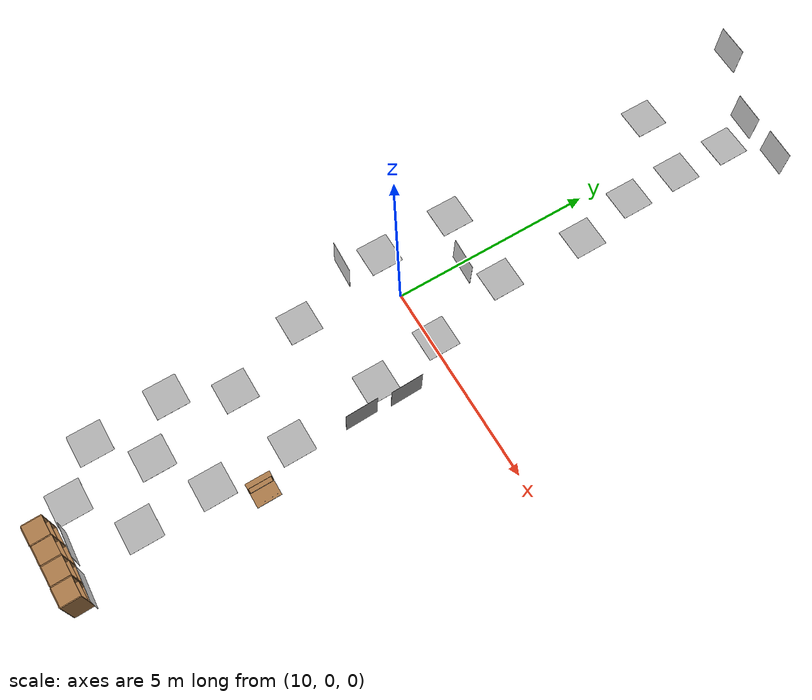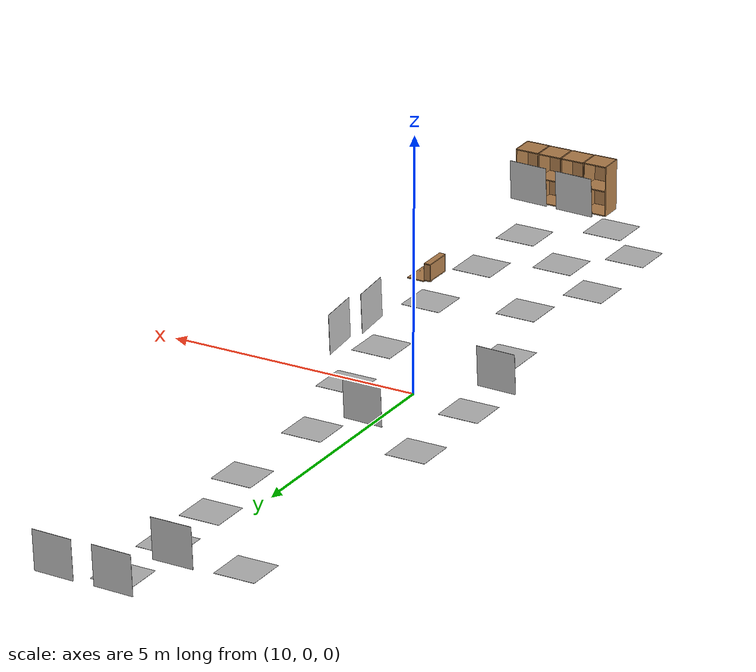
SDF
<sdf version="1.6">
 <world name="factory">
  <model name="cabinet_clone">
   <static>1</static>
   <link name="cabinet_bottom_plate">
    <inertial>
     <pose>0 0 -1 0 -0 0</pose>
     <inertia><ixx>2.05</ixx><ixy>0</ixy><ixz>0</ixz><iyy>2.05</iyy><iyz>0</iyz><izz>2.05</izz></inertia>
     <mass>25</mass>
    </inertial>
    <collision name="cabinet_bottom_plate_geom">
     <pose>0 0 0.01 0 -0 0</pose>
     <geometry><box><size>0.45 0.45 0.02</size></box></geometry>
    </collision>
    <visual name="cabinet_bottom_plate_geom_visual">
     <pose>0 0 0.01 0 -0 0</pose>
     <geometry><box><size>0.45 0.45 0.02</size></box></geometry>
     <material>
      <script><uri>file://media/materials/scripts/gazebo.material</uri><name>Gazebo/Wood</name></script>
     </material>
    </visual>
    <collision name="cabinet_bottom_plate_geom_cabinet_back_plate">
     <pose>0.235 0 0.51 0 -0 0</pose>
     <geometry><box><size>0.02 0.45 1.02</size></box></geometry>
    </collision>
    <visual name="cabinet_bottom_plate_geom_cabinet_back_plate_visual">
     <pose>0.235 0 0.51 0 -0 0</pose>
     <geometry><box><size>0.02 0.45 1.02</size></box></geometry>
     <material>
      <script><uri>file://media/materials/scripts/gazebo.material</uri><name>Gazebo/Wood</name></script>
     </material>
    </visual>
    <collision name="cabinet_bottom_plate_geom_cabinet_left_plate">
     <pose>0 0.235 0.51 0 -0 0</pose>
     <geometry><box><size>0.45 0.02 1.02</size></box></geometry>
    </collision>
    <visual name="cabinet_bottom_plate_geom_cabinet_left_plate_visual">
     <pose>0 0.235 0.51 0 -0 0</pose>
     <geometry><box><size>0.45 0.02 1.02</size></box></geometry>
     <material>
      <script><uri>file://media/materials/scripts/gazebo.material</uri><name>Gazebo/Wood</name></script>
     </material>
    </visual>
    <collision name="cabinet_bottom_plate_geom_cabinet_middle_plate">
     <pose>0 0 0.51 0 -0 0</pose>
     <geometry><box><size>0.45 0.45 0.02</size></box></geometry>
    </collision>
    <visual name="cabinet_bottom_plate_geom_cabinet_middle_plate_visual">
     <pose>0 0 0.51 0 -0 0</pose>
     <geometry><box><size>0.45 0.45 0.02</size></box></geometry>
     <material>
      <script><uri>file://media/materials/scripts/gazebo.material</uri><name>Gazebo/Wood</name></script>
     </material>
    </visual>
    <collision name="cabinet_bottom_plate_geom_cabinet_right_plate">
     <pose>0 -0.235 0.51 0 -0 0</pose>
     <geometry><box><size>0.45 0.02 1.02</size></box></geometry>
    </collision>
    <visual name="cabinet_bottom_plate_geom_cabinet_right_plate_visual">
     <pose>0 -0.235 0.51 0 -0 0</pose>
     <geometry><box><size>0.45 0.02 1.02</size></box></geometry>
     <material>
      <script><uri>file://media/materials/scripts/gazebo.material</uri><name>Gazebo/Wood</name></script>
     </material>
    </visual>
    <collision name="cabinet_bottom_plate_geom_cabinet_top_plate">
     <pose>0 0 1.01 0 -0 0</pose>
     <geometry><box><size>0.45 0.45 0.02</size></box></geometry>
    </collision>
    <visual name="cabinet_bottom_plate_geom_cabinet_top_plate_visual">
     <pose>0 0 1.01 0 -0 0</pose>
     <geometry><box><size>0.45 0.45 0.02</size></box></geometry>
     <material>
      <script><uri>file://media/materials/scripts/gazebo.material</uri><name>Gazebo/Wood</name></script>
     </material>
    </visual>
   </link>
   <pose>12.5585 -9.14446 0.037072 0 0 -1.55676</pose>
  </model>
  <model name="cabinet_clone_0">
   <static>1</static>
   <link name="cabinet_bottom_plate">
    <inertial>
     <pose>0 0 -1 0 -0 0</pose>
     <inertia><ixx>2.05</ixx><ixy>0</ixy><ixz>0</ixz><iyy>2.05</iyy><iyz>0</iyz><izz>2.05</izz></inertia>
     <mass>25</mass>
    </inertial>
    <collision name="cabinet_bottom_plate_geom">
     <pose>0 0 0.01 0 -0 0</pose>
     <geometry><box><size>0.45 0.45 0.02</size></box></geometry>
    </collision>
    <visual name="cabinet_bottom_plate_geom_visual">
     <pose>0 0 0.01 0 -0 0</pose>
     <geometry><box><size>0.45 0.45 0.02</size></box></geometry>
     <material>
      <script><uri>file://media/materials/scripts/gazebo.material</uri><name>Gazebo/Wood</name></script>
     </material>
    </visual>
    <collision name="cabinet_bottom_plate_geom_cabinet_back_plate">
     <pose>0.235 0 0.51 0 -0 0</pose>
     <geometry><box><size>0.02 0.45 1.02</size></box></geometry>
    </collision>
    <visual name="cabinet_bottom_plate_geom_cabinet_back_plate_visual">
     <pose>0.235 0 0.51 0 -0 0</pose>
     <geometry><box><size>0.02 0.45 1.02</size></box></geometry>
     <material>
      <script><uri>file://media/materials/scripts/gazebo.material</uri><name>Gazebo/Wood</name></script>
     </material>
    </visual>
    <collision name="cabinet_bottom_plate_geom_cabinet_left_plate">
     <pose>0 0.235 0.51 0 -0 0</pose>
     <geometry><box><size>0.45 0.02 1.02</size></box></geometry>
    </collision>
    <visual name="cabinet_bottom_plate_geom_cabinet_left_plate_visual">
     <pose>0 0.235 0.51 0 -0 0</pose>
     <geometry><box><size>0.45 0.02 1.02</size></box></geometry>
     <material>
      <script><uri>file://media/materials/scripts/gazebo.material</uri><name>Gazebo/Wood</name></script>
     </material>
    </visual>
    <collision name="cabinet_bottom_plate_geom_cabinet_middle_plate">
     <pose>0 0 0.51 0 -0 0</pose>
     <geometry><box><size>0.45 0.45 0.02</size></box></geometry>
    </collision>
    <visual name="cabinet_bottom_plate_geom_cabinet_middle_plate_visual">
     <pose>0 0 0.51 0 -0 0</pose>
     <geometry><box><size>0.45 0.45 0.02</size></box></geometry>
     <material>
      <script><uri>file://media/materials/scripts/gazebo.material</uri><name>Gazebo/Wood</name></script>
     </material>
    </visual>
    <collision name="cabinet_bottom_plate_geom_cabinet_right_plate">
     <pose>0 -0.235 0.51 0 -0 0</pose>
     <geometry><box><size>0.45 0.02 1.02</size></box></geometry>
    </collision>
    <visual name="cabinet_bottom_plate_geom_cabinet_right_plate_visual">
     <pose>0 -0.235 0.51 0 -0 0</pose>
     <geometry><box><size>0.45 0.02 1.02</size></box></geometry>
     <material>
      <script><uri>file://media/materials/scripts/gazebo.material</uri><name>Gazebo/Wood</name></script>
     </material>
    </visual>
    <collision name="cabinet_bottom_plate_geom_cabinet_top_plate">
     <pose>0 0 1.01 0 -0 0</pose>
     <geometry><box><size>0.45 0.45 0.02</size></box></geometry>
    </collision>
    <visual name="cabinet_bottom_plate_geom_cabinet_top_plate_visual">
     <pose>0 0 1.01 0 -0 0</pose>
     <geometry><box><size>0.45 0.45 0.02</size></box></geometry>
     <material>
      <script><uri>file://media/materials/scripts/gazebo.material</uri><name>Gazebo/Wood</name></script>
     </material>
    </visual>
   </link>
   <pose>12.0748 -9.14339 0.037072 0 0 -1.55676</pose>
  </model>
  <model name="cabinet_clone_1">
   <static>1</static>
   <link name="cabinet_bottom_plate">
    <inertial>
     <pose>0 0 -1 0 -0 0</pose>
     <inertia><ixx>2.05</ixx><ixy>0</ixy><ixz>0</ixz><iyy>2.05</iyy><iyz>0</iyz><izz>2.05</izz></inertia>
     <mass>25</mass>
    </inertial>
    <collision name="cabinet_bottom_plate_geom">
     <pose>0 0 0.01 0 -0 0</pose>
     <geometry><box><size>0.45 0.45 0.02</size></box></geometry>
    </collision>
    <visual name="cabinet_bottom_plate_geom_visual">
     <pose>0 0 0.01 0 -0 0</pose>
     <geometry><box><size>0.45 0.45 0.02</size></box></geometry>
     <material>
      <script><uri>file://media/materials/scripts/gazebo.material</uri><name>Gazebo/Wood</name></script>
     </material>
    </visual>
    <collision name="cabinet_bottom_plate_geom_cabinet_back_plate">
     <pose>0.235 0 0.51 0 -0 0</pose>
     <geometry><box><size>0.02 0.45 1.02</size></box></geometry>
    </collision>
    <visual name="cabinet_bottom_plate_geom_cabinet_back_plate_visual">
     <pose>0.235 0 0.51 0 -0 0</pose>
     <geometry><box><size>0.02 0.45 1.02</size></box></geometry>
     <material>
      <script><uri>file://media/materials/scripts/gazebo.material</uri><name>Gazebo/Wood</name></script>
     </material>
    </visual>
    <collision name="cabinet_bottom_plate_geom_cabinet_left_plate">
     <pose>0 0.235 0.51 0 -0 0</pose>
     <geometry><box><size>0.45 0.02 1.02</size></box></geometry>
    </collision>
    <visual name="cabinet_bottom_plate_geom_cabinet_left_plate_visual">
     <pose>0 0.235 0.51 0 -0 0</pose>
     <geometry><box><size>0.45 0.02 1.02</size></box></geometry>
     <material>
      <script><uri>file://media/materials/scripts/gazebo.material</uri><name>Gazebo/Wood</name></script>
     </material>
    </visual>
    <collision name="cabinet_bottom_plate_geom_cabinet_middle_plate">
     <pose>0 0 0.51 0 -0 0</pose>
     <geometry><box><size>0.45 0.45 0.02</size></box></geometry>
    </collision>
    <visual name="cabinet_bottom_plate_geom_cabinet_middle_plate_visual">
     <pose>0 0 0.51 0 -0 0</pose>
     <geometry><box><size>0.45 0.45 0.02</size></box></geometry>
     <material>
      <script><uri>file://media/materials/scripts/gazebo.material</uri><name>Gazebo/Wood</name></script>
     </material>
    </visual>
    <collision name="cabinet_bottom_plate_geom_cabinet_right_plate">
     <pose>0 -0.235 0.51 0 -0 0</pose>
     <geometry><box><size>0.45 0.02 1.02</size></box></geometry>
    </collision>
    <visual name="cabinet_bottom_plate_geom_cabinet_right_plate_visual">
     <pose>0 -0.235 0.51 0 -0 0</pose>
     <geometry><box><size>0.45 0.02 1.02</size></box></geometry>
     <material>
      <script><uri>file://media/materials/scripts/gazebo.material</uri><name>Gazebo/Wood</name></script>
     </material>
    </visual>
    <collision name="cabinet_bottom_plate_geom_cabinet_top_plate">
     <pose>0 0 1.01 0 -0 0</pose>
     <geometry><box><size>0.45 0.45 0.02</size></box></geometry>
    </collision>
    <visual name="cabinet_bottom_plate_geom_cabinet_top_plate_visual">
     <pose>0 0 1.01 0 -0 0</pose>
     <geometry><box><size>0.45 0.45 0.02</size></box></geometry>
     <material>
      <script><uri>file://media/materials/scripts/gazebo.material</uri><name>Gazebo/Wood</name></script>
     </material>
    </visual>
   </link>
   <pose>11.5886 -9.15198 0.037072 0 0 -1.55676</pose>
  </model>
  <model name="cabinet_clone_2">
   <static>1</static>
   <link name="cabinet_bottom_plate">
    <inertial>
     <pose>0 0 -1 0 -0 0</pose>
     <inertia><ixx>2.05</ixx><ixy>0</ixy><ixz>0</ixz><iyy>2.05</iyy><iyz>0</iyz><izz>2.05</izz></inertia>
     <mass>25</mass>
    </inertial>
    <collision name="cabinet_bottom_plate_geom">
     <pose>0 0 0.01 0 -0 0</pose>
     <geometry><box><size>0.45 0.45 0.02</size></box></geometry>
    </collision>
    <visual name="cabinet_bottom_plate_geom_visual">
     <pose>0 0 0.01 0 -0 0</pose>
     <geometry><box><size>0.45 0.45 0.02</size></box></geometry>
     <material>
      <script><uri>file://media/materials/scripts/gazebo.material</uri><name>Gazebo/Wood</name></script>
     </material>
    </visual>
    <collision name="cabinet_bottom_plate_geom_cabinet_back_plate">
     <pose>0.235 0 0.51 0 -0 0</pose>
     <geometry><box><size>0.02 0.45 1.02</size></box></geometry>
    </collision>
    <visual name="cabinet_bottom_plate_geom_cabinet_back_plate_visual">
     <pose>0.235 0 0.51 0 -0 0</pose>
     <geometry><box><size>0.02 0.45 1.02</size></box></geometry>
     <material>
      <script><uri>file://media/materials/scripts/gazebo.material</uri><name>Gazebo/Wood</name></script>
     </material>
    </visual>
    <collision name="cabinet_bottom_plate_geom_cabinet_left_plate">
     <pose>0 0.235 0.51 0 -0 0</pose>
     <geometry><box><size>0.45 0.02 1.02</size></box></geometry>
    </collision>
    <visual name="cabinet_bottom_plate_geom_cabinet_left_plate_visual">
     <pose>0 0.235 0.51 0 -0 0</pose>
     <geometry><box><size>0.45 0.02 1.02</size></box></geometry>
     <material>
      <script><uri>file://media/materials/scripts/gazebo.material</uri><name>Gazebo/Wood</name></script>
     </material>
    </visual>
    <collision name="cabinet_bottom_plate_geom_cabinet_middle_plate">
     <pose>0 0 0.51 0 -0 0</pose>
     <geometry><box><size>0.45 0.45 0.02</size></box></geometry>
    </collision>
    <visual name="cabinet_bottom_plate_geom_cabinet_middle_plate_visual">
     <pose>0 0 0.51 0 -0 0</pose>
     <geometry><box><size>0.45 0.45 0.02</size></box></geometry>
     <material>
      <script><uri>file://media/materials/scripts/gazebo.material</uri><name>Gazebo/Wood</name></script>
     </material>
    </visual>
    <collision name="cabinet_bottom_plate_geom_cabinet_right_plate">
     <pose>0 -0.235 0.51 0 -0 0</pose>
     <geometry><box><size>0.45 0.02 1.02</size></box></geometry>
    </collision>
    <visual name="cabinet_bottom_plate_geom_cabinet_right_plate_visual">
     <pose>0 -0.235 0.51 0 -0 0</pose>
     <geometry><box><size>0.45 0.02 1.02</size></box></geometry>
     <material>
      <script><uri>file://media/materials/scripts/gazebo.material</uri><name>Gazebo/Wood</name></script>
     </material>
    </visual>
    <collision name="cabinet_bottom_plate_geom_cabinet_top_plate">
     <pose>0 0 1.01 0 -0 0</pose>
     <geometry><box><size>0.45 0.45 0.02</size></box></geometry>
    </collision>
    <visual name="cabinet_bottom_plate_geom_cabinet_top_plate_visual">
     <pose>0 0 1.01 0 -0 0</pose>
     <geometry><box><size>0.45 0.45 0.02</size></box></geometry>
     <material>
      <script><uri>file://media/materials/scripts/gazebo.material</uri><name>Gazebo/Wood</name></script>
     </material>
    </visual>
   </link>
   <pose>11.1088 -9.16946 0.037072 0 0 -1.55676</pose>
  </model>
  <model name="wooden_case_clone">
   <link name="base">
    <pose>0 0 0.024 0 -0 0</pose>
    <inertial>
     <pose>-0.022184 0 0.171592 0 -0 0</pose>
     <mass>3.96264</mass>
     <inertia>
      <ixx>0.213536</ixx>
      <ixy>0</ixy>
      <ixz>0.000779377</ixz>
      <iyy>0.0708943</iyy>
      <iyz>0</iyz>
      <izz>0.154604</izz>
     </inertia>
    </inertial>
    <collision name="collision_back">
     <pose>-0.053975 0 0.1778 0 -0 0</pose>
     <geometry><box><size>0.01905 0.5461 0.3175</size></box></geometry>
     <surface>
      <contact>
       <poissons_ratio>0.347</poissons_ratio>
       <elastic_modulus>8.8e+09</elastic_modulus>
       <ode><kp>100000</kp><kd>100</kd><max_vel>100</max_vel><min_depth>0.001</min_depth></ode>
      </contact>
      <friction>
       <torsional>
        <coefficient>1</coefficient>
        <use_patch_radius>0</use_patch_radius>
        <surface_radius>0.01</surface_radius>
       </torsional>
      </friction>
     </surface>
    </collision>
    <visual name="visual_back">
     <pose>-0.053975 0 0.1778 0 -0 0</pose>
     <geometry><box><size>0.01905 0.5461 0.3175</size></box></geometry>
     <material>
      <script><uri>file://media/materials/scripts/gazebo.material</uri><name>Gazebo/Wood</name></script>
     </material>
    </visual>
    <collision name="collision_bottom">
     <pose>0 0 0.009525 0 -0 0</pose>
     <geometry><box><size>0.127 0.5842 0.01905</size></box></geometry>
     <surface>
      <contact>
       <poissons_ratio>0.347</poissons_ratio>
       <elastic_modulus>8.8e+09</elastic_modulus>
       <ode><kp>100000</kp><kd>100</kd><max_vel>100</max_vel><min_depth>0.001</min_depth></ode>
      </contact>
      <friction>
       <torsional>
        <coefficient>1</coefficient>
        <use_patch_radius>0</use_patch_radius>
        <surface_radius>0.01</surface_radius>
       </torsional>
      </friction>
     </surface>
    </collision>
    <visual name="visual_bottom">
     <pose>0 0 0.009525 0 -0 0</pose>
     <geometry><box><size>0.127 0.5842 0.01905</size></box></geometry>
     <material>
      <script><uri>file://media/materials/scripts/gazebo.material</uri><name>Gazebo/Wood</name></script>
     </material>
    </visual>
    <collision name="collision_top">
     <pose>0 0 0.346075 0 -0 0</pose>
     <geometry><box><size>0.127 0.5842 0.01905</size></box></geometry>
     <surface>
      <contact>
       <poissons_ratio>0.347</poissons_ratio>
       <elastic_modulus>8.8e+09</elastic_modulus>
       <ode><kp>100000</kp><kd>100</kd><max_vel>100</max_vel><min_depth>0.001</min_depth></ode>
      </contact>
      <friction>
       <torsional>
        <coefficient>1</coefficient>
        <use_patch_radius>0</use_patch_radius>
        <surface_radius>0.01</surface_radius>
       </torsional>
      </friction>
     </surface>
    </collision>
    <visual name="visual_top">
     <pose>0 0 0.346075 0 -0 0</pose>
     <geometry><box><size>0.127 0.5842 0.01905</size></box></geometry>
     <material>
      <script><uri>file://media/materials/scripts/gazebo.material</uri><name>Gazebo/Wood</name></script>
     </material>
    </visual>
    <collision name="collision_left">
     <pose>0 -0.282575 0.1778 0 -0 0</pose>
     <geometry><box><size>0.127 0.01905 0.3175</size></box></geometry>
     <surface>
      <contact>
       <poissons_ratio>0.347</poissons_ratio>
       <elastic_modulus>8.8e+09</elastic_modulus>
       <ode><kp>100000</kp><kd>100</kd><max_vel>100</max_vel><min_depth>0.001</min_depth></ode>
      </contact>
      <friction>
       <torsional>
        <coefficient>1</coefficient>
        <use_patch_radius>0</use_patch_radius>
        <surface_radius>0.01</surface_radius>
       </torsional>
      </friction>
     </surface>
    </collision>
    <visual name="visual_left">
     <pose>0 -0.282575 0.1778 0 -0 0</pose>
     <geometry><box><size>0.127 0.01905 0.3175</size></box></geometry>
     <material>
      <script><uri>file://media/materials/scripts/gazebo.material</uri><name>Gazebo/Wood</name></script>
     </material>
    </visual>
    <collision name="collision_right">
     <pose>0 0.282575 0.1778 0 -0 0</pose>
     <geometry><box><size>0.127 0.01905 0.3175</size></box></geometry>
     <surface>
      <contact>
       <poissons_ratio>0.347</poissons_ratio>
       <elastic_modulus>8.8e+09</elastic_modulus>
       <ode><kp>100000</kp><kd>100</kd><max_vel>100</max_vel><min_depth>0.001</min_depth></ode>
      </contact>
      <friction>
       <torsional>
        <coefficient>1</coefficient>
        <use_patch_radius>0</use_patch_radius>
        <surface_radius>0.01</surface_radius>
       </torsional>
      </friction>
     </surface>
    </collision>
    <visual name="visual_right">
     <pose>0 0.282575 0.1778 0 -0 0</pose>
     <geometry><box><size>0.127 0.01905 0.3175</size></box></geometry>
     <material>
      <script><uri>file://media/materials/scripts/gazebo.material</uri><name>Gazebo/Wood</name></script>
     </material>
    </visual>
    <collision name="collision_block_left">
     <pose>0.0095 -0.2151 -0.012 0 -0 0</pose>
     <geometry><box><size>0.108 0.05 0.024</size></box></geometry>
     <surface>
      <contact>
       <poissons_ratio>0.347</poissons_ratio>
       <elastic_modulus>8.8e+09</elastic_modulus>
       <ode><kp>100000</kp><kd>100</kd><max_vel>100</max_vel><min_depth>0.001</min_depth></ode>
      </contact>
      <friction>
       <torsional>
        <coefficient>1</coefficient>
        <use_patch_radius>0</use_patch_radius>
        <surface_radius>0.01</surface_radius>
       </torsional>
      </friction>
     </surface>
    </collision>
    <visual name="visual_block_left">
     <pose>0.0095 -0.2151 -0.012 0 -0 0</pose>
     <geometry><box><size>0.108 0.05 0.024</size></box></geometry>
     <material>
      <script><uri>file://media/materials/scripts/gazebo.material</uri><name>Gazebo/Wood</name></script>
     </material>
    </visual>
    <collision name="collision_block_right">
     <pose>0.0095 0.2151 -0.012 0 -0 0</pose>
     <geometry><box><size>0.108 0.05 0.024</size></box></geometry>
     <surface>
      <contact>
       <poissons_ratio>0.347</poissons_ratio>
       <elastic_modulus>8.8e+09</elastic_modulus>
       <ode><kp>100000</kp><kd>100</kd><max_vel>100</max_vel><min_depth>0.001</min_depth></ode>
      </contact>
      <friction>
       <torsional>
        <coefficient>1</coefficient>
        <use_patch_radius>0</use_patch_radius>
        <surface_radius>0.01</surface_radius>
       </torsional>
      </friction>
     </surface>
    </collision>
    <visual name="visual_block_right">
     <pose>0.0095 0.2151 -0.012 0 -0 0</pose>
     <geometry><box><size>0.108 0.05 0.024</size></box></geometry>
     <material>
      <script><uri>file://media/materials/scripts/gazebo.material</uri><name>Gazebo/Wood</name></script>
     </material>
    </visual>
   </link>
   <link name="lid">
    <pose>0.243775 0 0.009525 0 -0 0</pose>
    <inertial>
     <mass>1.97874</mass>
     <inertia>
      <ixx>0.0563367</ixx>
      <ixy>0</ixy>
      <ixz>0</ixz>
      <iyy>0.020911</iyy>
      <iyz>0</iyz>
      <izz>0.0771281</izz>
     </inertia>
    </inertial>
    <collision name="collision">
     <geometry><box><size>0.3556 0.5842 0.01905</size></box></geometry>
     <surface>
      <contact>
       <poissons_ratio>0.347</poissons_ratio>
       <elastic_modulus>8.8e+09</elastic_modulus>
       <ode><kp>100000</kp><kd>100</kd><max_vel>100</max_vel><min_depth>0.001</min_depth></ode>
      </contact>
      <friction>
       <torsional>
        <coefficient>1</coefficient>
        <use_patch_radius>0</use_patch_radius>
        <surface_radius>0.01</surface_radius>
       </torsional>
      </friction>
     </surface>
    </collision>
    <visual name="visual">
     <geometry><box><size>0.3556 0.5842 0.01905</size></box></geometry>
     <material>
      <script><uri>file://media/materials/scripts/gazebo.material</uri><name>Gazebo/Wood</name></script>
     </material>
    </visual>
    <visual name="tee_nut_1">
     <pose>0.122 -0.216 0 0 -0 0</pose>
     <geometry><cylinder><radius>0.00635</radius><length>0.0192405</length></cylinder></geometry>
     <material>
      <script><uri>file://media/materials/scripts/gazebo.material</uri><name>Gazebo/Grey</name></script>
     </material>
    </visual>
    <visual name="tee_nut_2">
     <pose>0.122 -0.088 0 0 -0 0</pose>
     <geometry><cylinder><radius>0.00635</radius><length>0.0192405</length></cylinder></geometry>
     <material>
      <script><uri>file://media/materials/scripts/gazebo.material</uri><name>Gazebo/Grey</name></script>
     </material>
    </visual>
    <visual name="tee_nut_3">
     <pose>0.122 0.088 0 0 -0 0</pose>
     <geometry><cylinder><radius>0.00635</radius><length>0.0192405</length></cylinder></geometry>
     <material>
      <script><uri>file://media/materials/scripts/gazebo.material</uri><name>Gazebo/Grey</name></script>
     </material>
    </visual>
    <visual name="tee_nut_4">
     <pose>0.122 0.216 0 0 -0 0</pose>
     <geometry><cylinder><radius>0.00635</radius><length>0.0192405</length></cylinder></geometry>
     <material>
      <script><uri>file://media/materials/scripts/gazebo.material</uri><name>Gazebo/Grey</name></script>
     </material>
    </visual>
   </link>
   <joint name="lid_hinge" type="revolute">
    <pose>-0.1778 0 0.01905 0 -0 0</pose>
    <parent>base</parent>
    <child>lid</child>
    <axis>
     <xyz>0 1 0</xyz>
     <limit><upper>0.523599</upper><lower>-1.5708</lower></limit>
     <use_parent_model_frame>0</use_parent_model_frame>
     <dynamics><spring_reference>0</spring_reference><spring_stiffness>0</spring_stiffness></dynamics>
    </axis>
   </joint>
   <pose>12.2927 -4.84304 -0.001057 0 -0.000442 -1e-06</pose>
  </model>
  <model name="kalibr_tag_clone_0_clone_clone_clone">
   <static>1</static>
   <link name="link">
    <inertial>
     <mass>0.1</mass>
     <inertia>
      <ixx>0.000166667</ixx>
      <iyy>0.000166667</iyy>
      <izz>0.000166667</izz>
      <ixy>0</ixy>
      <ixz>0</ixz>
      <iyz>0</iyz>
     </inertia>
    </inertial>
    <collision name="collision"><geometry><box><size>0.8 0.8 0.005</size></box></geometry></collision>
    <visual name="visual">
     <geometry><box><size>0.8 0.8 0.005</size></box></geometry>
     <material>
      <script>
       <uri>model://kalibr_tag/materials/scripts</uri>
       <uri>model://kalibr_tag/materials/textures</uri>
       <name>Kalibr_tag/Diffuse</name>
      </script>
     </material>
    </visual>
   </link>
   <pose>10.9156 4.4462 -0.000701 0 -0 0</pose>
  </model>
  <model name="kalibr_tag_clone_0_clone_clone_clone_6">
   <static>1</static>
   <link name="link">
    <inertial>
     <mass>0.1</mass>
     <inertia>
      <ixx>0.000166667</ixx>
      <iyy>0.000166667</iyy>
      <izz>0.000166667</izz>
      <ixy>0</ixy>
      <ixz>0</ixz>
      <iyz>0</iyz>
     </inertia>
    </inertial>
    <collision name="collision"><geometry><box><size>0.8 0.8 0.005</size></box></geometry></collision>
    <visual name="visual">
     <geometry><box><size>0.8 0.8 0.005</size></box></geometry>
     <material>
      <script>
       <uri>model://kalibr_tag/materials/scripts</uri>
       <uri>model://kalibr_tag/materials/textures</uri>
       <name>Kalibr_tag/Diffuse</name>
      </script>
     </material>
    </visual>
   </link>
   <pose>8.80603 0.120564 -0.000701 0 -0 0</pose>
  </model>
  <model name="kalibr_tag_clone_0_clone_clone_clone_8">
   <static>1</static>
   <link name="link">
    <inertial>
     <mass>0.1</mass>
     <inertia>
      <ixx>0.000166667</ixx>
      <iyy>0.000166667</iyy>
      <izz>0.000166667</izz>
      <ixy>0</ixy>
      <ixz>0</ixz>
      <iyz>0</iyz>
     </inertia>
    </inertial>
    <collision name="collision"><geometry><box><size>0.8 0.8 0.005</size></box></geometry></collision>
    <visual name="visual">
     <geometry><box><size>0.8 0.8 0.005</size></box></geometry>
     <material>
      <script>
       <uri>model://kalibr_tag/materials/scripts</uri>
       <uri>model://kalibr_tag/materials/textures</uri>
       <name>Kalibr_tag/Diffuse</name>
      </script>
     </material>
    </visual>
   </link>
   <pose>11.5595 -1.56148 -0.000701 0 -0 0</pose>
  </model>
  <model name="kalibr_tag_clone_clone_clone_clone_clone_clone_clone_2">
   <static>1</static>
   <link name="link">
    <inertial>
     <mass>0.1</mass>
     <inertia>
      <ixx>0.000166667</ixx>
      <iyy>0.000166667</iyy>
      <izz>0.000166667</izz>
      <ixy>0</ixy>
      <ixz>0</ixz>
      <iyz>0</iyz>
     </inertia>
    </inertial>
    <collision name="collision"><geometry><box><size>0.8 0.8 0.005</size></box></geometry></collision>
    <visual name="visual">
     <geometry><box><size>0.8 0.8 0.005</size></box></geometry>
     <material>
      <script>
       <uri>model://kalibr_tag/materials/scripts</uri>
       <uri>model://kalibr_tag/materials/textures</uri>
       <name>Kalibr_tag/Diffuse</name>
      </script>
     </material>
    </visual>
   </link>
   <pose>12.4926 -8.85294 0.425094 1.62908 -0.00671 3.09537</pose>
  </model>
  <model name="kalibr_tag_clone_0_clone_clone_clone_11">
   <static>1</static>
   <link name="link">
    <inertial>
     <mass>0.1</mass>
     <inertia>
      <ixx>0.000166667</ixx>
      <iyy>0.000166667</iyy>
      <izz>0.000166667</izz>
      <ixy>0</ixy>
      <ixz>0</ixz>
      <iyz>0</iyz>
     </inertia>
    </inertial>
    <collision name="collision"><geometry><box><size>0.8 0.8 0.005</size></box></geometry></collision>
    <visual name="visual">
     <geometry><box><size>0.8 0.8 0.005</size></box></geometry>
     <material>
      <script>
       <uri>model://kalibr_tag/materials/scripts</uri>
       <uri>model://kalibr_tag/materials/textures</uri>
       <name>Kalibr_tag/Diffuse</name>
      </script>
     </material>
    </visual>
   </link>
   <pose>8.91579 7.65517 -0.000701 0 -0 0</pose>
  </model>
  <model name="kalibr_tag_clone_0_clone_clone_clone_clone">
   <static>1</static>
   <link name="link">
    <inertial>
     <mass>0.1</mass>
     <inertia>
      <ixx>0.000166667</ixx>
      <iyy>0.000166667</iyy>
      <izz>0.000166667</izz>
      <ixy>0</ixy>
      <ixz>0</ixz>
      <iyz>0</iyz>
     </inertia>
    </inertial>
    <collision name="collision"><geometry><box><size>0.8 0.8 0.005</size></box></geometry></collision>
    <visual name="visual">
     <geometry><box><size>0.8 0.8 0.005</size></box></geometry>
     <material>
      <script>
       <uri>model://kalibr_tag/materials/scripts</uri>
       <uri>model://kalibr_tag/materials/textures</uri>
       <name>Kalibr_tag/Diffuse</name>
      </script>
     </material>
    </visual>
   </link>
   <pose>10.6101 6.00927 -0.000701 0 -0 0</pose>
  </model>
  <model name="kalibr_tag_clone_0_clone_clone_clone_clone_0">
   <static>1</static>
   <link name="link">
    <inertial>
     <mass>0.1</mass>
     <inertia>
      <ixx>0.000166667</ixx>
      <iyy>0.000166667</iyy>
      <izz>0.000166667</izz>
      <ixy>0</ixy>
      <ixz>0</ixz>
      <iyz>0</iyz>
     </inertia>
    </inertial>
    <collision name="collision"><geometry><box><size>0.8 0.8 0.005</size></box></geometry></collision>
    <visual name="visual">
     <geometry><box><size>0.8 0.8 0.005</size></box></geometry>
     <material>
      <script>
       <uri>model://kalibr_tag/materials/scripts</uri>
       <uri>model://kalibr_tag/materials/textures</uri>
       <name>Kalibr_tag/Diffuse</name>
      </script>
     </material>
    </visual>
   </link>
   <pose>10.613 8.86523 -0.000701 0 -0 0</pose>
  </model>
  <model name="kalibr_tag_clone_0_clone_clone_clone_clone_10">
   <static>1</static>
   <link name="link">
    <inertial>
     <mass>0.1</mass>
     <inertia>
      <ixx>0.000166667</ixx>
      <iyy>0.000166667</iyy>
      <izz>0.000166667</izz>
      <ixy>0</ixy>
      <ixz>0</ixz>
      <iyz>0</iyz>
     </inertia>
    </inertial>
    <collision name="collision"><geometry><box><size>0.8 0.8 0.005</size></box></geometry></collision>
    <visual name="visual">
     <geometry><box><size>0.8 0.8 0.005</size></box></geometry>
     <material>
      <script>
       <uri>model://kalibr_tag/materials/scripts</uri>
       <uri>model://kalibr_tag/materials/textures</uri>
       <name>Kalibr_tag/Diffuse</name>
      </script>
     </material>
    </visual>
   </link>
   <pose>10.0862 -4.32729 -0.000701 0 -0 0</pose>
  </model>
  <model name="kalibr_tag_clone_0_clone_clone_clone_clone_11">
   <static>1</static>
   <link name="link">
    <inertial>
     <mass>0.1</mass>
     <inertia>
      <ixx>0.000166667</ixx>
      <iyy>0.000166667</iyy>
      <izz>0.000166667</izz>
      <ixy>0</ixy>
      <ixz>0</ixz>
      <iyz>0</iyz>
     </inertia>
    </inertial>
    <collision name="collision"><geometry><box><size>0.8 0.8 0.005</size></box></geometry></collision>
    <visual name="visual">
     <geometry><box><size>0.8 0.8 0.005</size></box></geometry>
     <material>
      <script>
       <uri>model://kalibr_tag/materials/scripts</uri>
       <uri>model://kalibr_tag/materials/textures</uri>
       <name>Kalibr_tag/Diffuse</name>
      </script>
     </material>
    </visual>
   </link>
   <pose>11.3168 0.145851 -0.000701 0 -0 0</pose>
  </model>
  <model name="kalibr_tag_clone_0_clone_clone_clone_7_clone_3">
   <static>1</static>
   <link name="link">
    <inertial>
     <mass>0.1</mass>
     <inertia>
      <ixx>0.000166667</ixx>
      <iyy>0.000166667</iyy>
      <izz>0.000166667</izz>
      <ixy>0</ixy>
      <ixz>0</ixz>
      <iyz>0</iyz>
     </inertia>
    </inertial>
    <collision name="collision"><geometry><box><size>0.8 0.8 0.005</size></box></geometry></collision>
    <visual name="visual">
     <geometry><box><size>0.8 0.8 0.005</size></box></geometry>
     <material>
      <script>
       <uri>model://kalibr_tag/materials/scripts</uri>
       <uri>model://kalibr_tag/materials/textures</uri>
       <name>Kalibr_tag/Diffuse</name>
      </script>
     </material>
    </visual>
   </link>
   <pose>8.77788 2.0768 -0.000701 0 -0 0</pose>
  </model>
  <model name="kalibr_tag_clone_0_clone_clone_clone_7_clone_4">
   <static>1</static>
   <link name="link">
    <inertial>
     <mass>0.1</mass>
     <inertia>
      <ixx>0.000166667</ixx>
      <iyy>0.000166667</iyy>
      <izz>0.000166667</izz>
      <ixy>0</ixy>
      <ixz>0</ixz>
      <iyz>0</iyz>
     </inertia>
    </inertial>
    <collision name="collision"><geometry><box><size>0.8 0.8 0.005</size></box></geometry></collision>
    <visual name="visual">
     <geometry><box><size>0.8 0.8 0.005</size></box></geometry>
     <material>
      <script>
       <uri>model://kalibr_tag/materials/scripts</uri>
       <uri>model://kalibr_tag/materials/textures</uri>
       <name>Kalibr_tag/Diffuse</name>
      </script>
     </material>
    </visual>
   </link>
   <pose>10.8175 2.19746 -0.000701 0 -0 0</pose>
  </model>
  <model name="kalibr_tag_clone_0_clone_clone_clone_clone_10_clone">
   <static>1</static>
   <link name="link">
    <inertial>
     <mass>0.1</mass>
     <inertia>
      <ixx>0.000166667</ixx>
      <iyy>0.000166667</iyy>
      <izz>0.000166667</izz>
      <ixy>0</ixy>
      <ixz>0</ixz>
      <iyz>0</iyz>
     </inertia>
    </inertial>
    <collision name="collision"><geometry><box><size>0.8 0.8 0.005</size></box></geometry></collision>
    <visual name="visual">
     <geometry><box><size>0.8 0.8 0.005</size></box></geometry>
     <material>
      <script>
       <uri>model://kalibr_tag/materials/scripts</uri>
       <uri>model://kalibr_tag/materials/textures</uri>
       <name>Kalibr_tag/Diffuse</name>
      </script>
     </material>
    </visual>
   </link>
   <pose>9.4125 -5.70182 -0.000701 0 -0 0</pose>
  </model>
  <model name="kalibr_tag_clone_0_clone_clone_clone_clone_10_clone_1">
   <static>1</static>
   <link name="link">
    <inertial>
     <mass>0.1</mass>
     <inertia>
      <ixx>0.000166667</ixx>
      <iyy>0.000166667</iyy>
      <izz>0.000166667</izz>
      <ixy>0</ixy>
      <ixz>0</ixz>
      <iyz>0</iyz>
     </inertia>
    </inertial>
    <collision name="collision"><geometry><box><size>0.8 0.8 0.005</size></box></geometry></collision>
    <visual name="visual">
     <geometry><box><size>0.8 0.8 0.005</size></box></geometry>
     <material>
      <script>
       <uri>model://kalibr_tag/materials/scripts</uri>
       <uri>model://kalibr_tag/materials/textures</uri>
       <name>Kalibr_tag/Diffuse</name>
      </script>
     </material>
    </visual>
   </link>
   <pose>9.52748 -7.58381 -0.000701 0 -0 0</pose>
  </model>
  <model name="kalibr_tag_clone_0_clone_clone_clone_clone_10_clone_2">
   <static>1</static>
   <link name="link">
    <inertial>
     <mass>0.1</mass>
     <inertia>
      <ixx>0.000166667</ixx>
      <iyy>0.000166667</iyy>
      <izz>0.000166667</izz>
      <ixy>0</ixy>
      <ixz>0</ixz>
      <iyz>0</iyz>
     </inertia>
    </inertial>
    <collision name="collision"><geometry><box><size>0.8 0.8 0.005</size></box></geometry></collision>
    <visual name="visual">
     <geometry><box><size>0.8 0.8 0.005</size></box></geometry>
     <material>
      <script>
       <uri>model://kalibr_tag/materials/scripts</uri>
       <uri>model://kalibr_tag/materials/textures</uri>
       <name>Kalibr_tag/Diffuse</name>
      </script>
     </material>
    </visual>
   </link>
   <pose>10.5307 -6.56717 -0.000701 0 -0 0</pose>
  </model>
  <model name="kalibr_tag_clone_0_clone_clone_clone_clone_10_clone_3">
   <static>1</static>
   <link name="link">
    <inertial>
     <mass>0.1</mass>
     <inertia>
      <ixx>0.000166667</ixx>
      <iyy>0.000166667</iyy>
      <izz>0.000166667</izz>
      <ixy>0</ixy>
      <ixz>0</ixz>
      <iyz>0</iyz>
     </inertia>
    </inertial>
    <collision name="collision"><geometry><box><size>0.8 0.8 0.005</size></box></geometry></collision>
    <visual name="visual">
     <geometry><box><size>0.8 0.8 0.005</size></box></geometry>
     <material>
      <script>
       <uri>model://kalibr_tag/materials/scripts</uri>
       <uri>model://kalibr_tag/materials/textures</uri>
       <name>Kalibr_tag/Diffuse</name>
      </script>
     </material>
    </visual>
   </link>
   <pose>11.7897 -5.7401 -0.000701 0 -0 0</pose>
  </model>
  <model name="kalibr_tag_clone_0_clone_clone_clone_clone_10_clone_4">
   <static>1</static>
   <link name="link">
    <inertial>
     <mass>0.1</mass>
     <inertia>
      <ixx>0.000166667</ixx>
      <iyy>0.000166667</iyy>
      <izz>0.000166667</izz>
      <ixy>0</ixy>
      <ixz>0</ixz>
      <iyz>0</iyz>
     </inertia>
    </inertial>
    <collision name="collision"><geometry><box><size>0.8 0.8 0.005</size></box></geometry></collision>
    <visual name="visual">
     <geometry><box><size>0.8 0.8 0.005</size></box></geometry>
     <material>
      <script>
       <uri>model://kalibr_tag/materials/scripts</uri>
       <uri>model://kalibr_tag/materials/textures</uri>
       <name>Kalibr_tag/Diffuse</name>
      </script>
     </material>
    </visual>
   </link>
   <pose>11.8094 -7.46711 -0.000701 0 -0 0</pose>
  </model>
  <model name="kalibr_tag_clone_0_clone_clone_clone_clone_10_clone_5">
   <static>1</static>
   <link name="link">
    <inertial>
     <mass>0.1</mass>
     <inertia>
      <ixx>0.000166667</ixx>
      <iyy>0.000166667</iyy>
      <izz>0.000166667</izz>
      <ixy>0</ixy>
      <ixz>0</ixz>
      <iyz>0</iyz>
     </inertia>
    </inertial>
    <collision name="collision"><geometry><box><size>0.8 0.8 0.005</size></box></geometry></collision>
    <visual name="visual">
     <geometry><box><size>0.8 0.8 0.005</size></box></geometry>
     <material>
      <script>
       <uri>model://kalibr_tag/materials/scripts</uri>
       <uri>model://kalibr_tag/materials/textures</uri>
       <name>Kalibr_tag/Diffuse</name>
      </script>
     </material>
    </visual>
   </link>
   <pose>10.5051 -8.52314 -0.000701 0 -0 0</pose>
  </model>
  <model name="kalibr_tag_clone_0_clone_clone_clone_clone_10_clone_15">
   <static>1</static>
   <link name="link">
    <inertial>
     <mass>0.1</mass>
     <inertia>
      <ixx>0.000166667</ixx>
      <iyy>0.000166667</iyy>
      <izz>0.000166667</izz>
      <ixy>0</ixy>
      <ixz>0</ixz>
      <iyz>0</iyz>
     </inertia>
    </inertial>
    <collision name="collision"><geometry><box><size>0.8 0.8 0.005</size></box></geometry></collision>
    <visual name="visual">
     <geometry><box><size>0.8 0.8 0.005</size></box></geometry>
     <material>
      <script>
       <uri>model://kalibr_tag/materials/scripts</uri>
       <uri>model://kalibr_tag/materials/textures</uri>
       <name>Kalibr_tag/Diffuse</name>
      </script>
     </material>
    </visual>
   </link>
   <pose>11.81 -3.82826 -0.000701 0 -0 0</pose>
  </model>
  <model name="kalibr_tag_clone_0_clone_clone_clone_clone_10_clone_16">
   <static>1</static>
   <link name="link">
    <inertial>
     <mass>0.1</mass>
     <inertia>
      <ixx>0.000166667</ixx>
      <iyy>0.000166667</iyy>
      <izz>0.000166667</izz>
      <ixy>0</ixy>
      <ixz>0</ixz>
      <iyz>0</iyz>
     </inertia>
    </inertial>
    <collision name="collision"><geometry><box><size>0.8 0.8 0.005</size></box></geometry></collision>
    <visual name="visual">
     <geometry><box><size>0.8 0.8 0.005</size></box></geometry>
     <material>
      <script>
       <uri>model://kalibr_tag/materials/scripts</uri>
       <uri>model://kalibr_tag/materials/textures</uri>
       <name>Kalibr_tag/Diffuse</name>
      </script>
     </material>
    </visual>
   </link>
   <pose>9.37413 -2.32619 -0.000701 0 -0 0</pose>
  </model>
  <model name="kalibr_tag_clone_clone_clone_clone_clone_clone_clone_2_clone">
   <static>1</static>
   <link name="link">
    <inertial>
     <mass>0.1</mass>
     <inertia>
      <ixx>0.000166667</ixx>
      <iyy>0.000166667</iyy>
      <izz>0.000166667</izz>
      <ixy>0</ixy>
      <ixz>0</ixz>
      <iyz>0</iyz>
     </inertia>
    </inertial>
    <collision name="collision"><geometry><box><size>0.8 0.8 0.005</size></box></geometry></collision>
    <visual name="visual">
     <geometry><box><size>0.8 0.8 0.005</size></box></geometry>
     <material>
      <script>
       <uri>model://kalibr_tag/materials/scripts</uri>
       <uri>model://kalibr_tag/materials/textures</uri>
       <name>Kalibr_tag/Diffuse</name>
      </script>
     </material>
    </visual>
   </link>
   <pose>11.4872 -8.81399 0.425094 1.62908 -0.00671 3.09537</pose>
  </model>
  <model name="kalibr_tag_clone_clone_clone_clone_clone_clone_clone_clone_clone_0">
   <static>1</static>
   <link name="link">
    <inertial>
     <mass>0.1</mass>
     <inertia>
      <ixx>0.000166667</ixx>
      <iyy>0.000166667</iyy>
      <izz>0.000166667</izz>
      <ixy>0</ixy>
      <ixz>0</ixz>
      <iyz>0</iyz>
     </inertia>
    </inertial>
    <collision name="collision"><geometry><box><size>0.8 0.8 0.005</size></box></geometry></collision>
    <visual name="visual">
     <geometry><box><size>0.8 0.8 0.005</size></box></geometry>
     <material>
      <script>
       <uri>model://kalibr_tag/materials/scripts</uri>
       <uri>model://kalibr_tag/materials/textures</uri>
       <name>Kalibr_tag/Diffuse</name>
      </script>
     </material>
    </visual>
   </link>
   <pose>9.03805 9.8263 1.36333 1.62055 -0.00802 3.11786</pose>
  </model>
  <model name="kalibr_tag_clone_clone_clone_clone_clone_clone_clone_2_clone_clone">
   <static>1</static>
   <link name="link">
    <inertial>
     <mass>0.1</mass>
     <inertia>
      <ixx>0.000166667</ixx>
      <iyy>0.000166667</iyy>
      <izz>0.000166667</izz>
      <ixy>0</ixy>
      <ixz>0</ixz>
      <iyz>0</iyz>
     </inertia>
    </inertial>
    <collision name="collision"><geometry><box><size>0.8 0.8 0.005</size></box></geometry></collision>
    <visual name="visual">
     <geometry><box><size>0.8 0.8 0.005</size></box></geometry>
     <material>
      <script>
       <uri>model://kalibr_tag/materials/scripts</uri>
       <uri>model://kalibr_tag/materials/textures</uri>
       <name>Kalibr_tag/Diffuse</name>
      </script>
     </material>
    </visual>
   </link>
   <pose>8.78626 -0.844164 0.425094 1.62908 -0.00671 3.09537</pose>
  </model>
  <model name="kalibr_tag_clone_clone_clone_clone_clone_1_clone_clone_0_clone_0">
   <static>1</static>
   <link name="link">
    <inertial>
     <mass>0.1</mass>
     <inertia>
      <ixx>0.000166667</ixx>
      <iyy>0.000166667</iyy>
      <izz>0.000166667</izz>
      <ixy>0</ixy>
      <ixz>0</ixz>
      <iyz>0</iyz>
     </inertia>
    </inertial>
    <collision name="collision"><geometry><box><size>0.8 0.8 0.005</size></box></geometry></collision>
    <visual name="visual">
     <geometry><box><size>0.8 0.8 0.005</size></box></geometry>
     <material>
      <script>
       <uri>model://kalibr_tag/materials/scripts</uri>
       <uri>model://kalibr_tag/materials/textures</uri>
       <name>Kalibr_tag/Diffuse</name>
      </script>
     </material>
    </visual>
   </link>
   <pose>12.2046 -1.14158 0.42669 1.58264 0.057467 1.61346</pose>
  </model>
  <model name="kalibr_tag_clone_clone_clone_clone_clone_1_clone_clone_0_clone_1">
   <static>1</static>
   <link name="link">
    <inertial>
     <mass>0.1</mass>
     <inertia>
      <ixx>0.000166667</ixx>
      <iyy>0.000166667</iyy>
      <izz>0.000166667</izz>
      <ixy>0</ixy>
      <ixz>0</ixz>
      <iyz>0</iyz>
     </inertia>
    </inertial>
    <collision name="collision"><geometry><box><size>0.8 0.8 0.005</size></box></geometry></collision>
    <visual name="visual">
     <geometry><box><size>0.8 0.8 0.005</size></box></geometry>
     <material>
      <script>
       <uri>model://kalibr_tag/materials/scripts</uri>
       <uri>model://kalibr_tag/materials/textures</uri>
       <name>Kalibr_tag/Diffuse</name>
      </script>
     </material>
    </visual>
   </link>
   <pose>12.1702 -2.25136 0.42669 1.58264 0.057467 1.61346</pose>
  </model>
  <model name="kalibr_tag_clone_clone_clone_clone_clone_clone_clone_2_clone_clone_clone">
   <static>1</static>
   <link name="link">
    <inertial>
     <mass>0.1</mass>
     <inertia>
      <ixx>0.000166667</ixx>
      <iyy>0.000166667</iyy>
      <izz>0.000166667</izz>
      <ixy>0</ixy>
      <ixz>0</ixz>
      <iyz>0</iyz>
     </inertia>
    </inertial>
    <collision name="collision"><geometry><box><size>0.8 0.8 0.005</size></box></geometry></collision>
    <visual name="visual">
     <geometry><box><size>0.8 0.8 0.005</size></box></geometry>
     <material>
      <script>
       <uri>model://kalibr_tag/materials/scripts</uri>
       <uri>model://kalibr_tag/materials/textures</uri>
       <name>Kalibr_tag/Diffuse</name>
      </script>
     </material>
    </visual>
   </link>
   <pose>10.1659 1.56408 0.425094 1.62908 -0.00671 3.09537</pose>
  </model>
  <model name="kalibr_tag_clone_clone_clone_clone_clone_clone_clone_clone_clone_0_clone">
   <static>1</static>
   <link name="link">
    <inertial>
     <mass>0.1</mass>
     <inertia>
      <ixx>0.000166667</ixx>
      <iyy>0.000166667</iyy>
      <izz>0.000166667</izz>
      <ixy>0</ixy>
      <ixz>0</ixz>
      <iyz>0</iyz>
     </inertia>
    </inertial>
    <collision name="collision"><geometry><box><size>0.8 0.8 0.005</size></box></geometry></collision>
    <visual name="visual">
     <geometry><box><size>0.8 0.8 0.005</size></box></geometry>
     <material>
      <script>
       <uri>model://kalibr_tag/materials/scripts</uri>
       <uri>model://kalibr_tag/materials/textures</uri>
       <name>Kalibr_tag/Diffuse</name>
      </script>
     </material>
    </visual>
   </link>
   <pose>10.3856 9.56108 0.424998 1.62908 -0.00671 3.09537</pose>
  </model>
  <model name="kalibr_tag_clone_clone_clone_clone_clone_clone_clone_clone_clone_0_clone_0">
   <static>1</static>
   <link name="link">
    <inertial>
     <mass>0.1</mass>
     <inertia>
      <ixx>0.000166667</ixx>
      <iyy>0.000166667</iyy>
      <izz>0.000166667</izz>
      <ixy>0</ixy>
      <ixz>0</ixz>
      <iyz>0</iyz>
     </inertia>
    </inertial>
    <collision name="collision"><geometry><box><size>0.8 0.8 0.005</size></box></geometry></collision>
    <visual name="visual">
     <geometry><box><size>0.8 0.8 0.005</size></box></geometry>
     <material>
      <script>
       <uri>model://kalibr_tag/materials/scripts</uri>
       <uri>model://kalibr_tag/materials/textures</uri>
       <name>Kalibr_tag/Diffuse</name>
      </script>
     </material>
    </visual>
   </link>
   <pose>11.5705 9.55391 0.424998 1.62908 -0.00671 3.09537</pose>
  </model>
  <model name="kalibr_tag_clone_0_clone_clone_clone_clone_3_clone_0">
   <static>1</static>
   <link name="link">
    <inertial>
     <mass>0.1</mass>
     <inertia>
      <ixx>0.000166667</ixx>
      <iyy>0.000166667</iyy>
      <izz>0.000166667</izz>
      <ixy>0</ixy>
      <ixz>0</ixz>
      <iyz>0</iyz>
     </inertia>
    </inertial>
    <collision name="collision"><geometry><box><size>0.8 0.8 0.005</size></box></geometry></collision>
    <visual name="visual">
     <geometry><box><size>0.8 0.8 0.005</size></box></geometry>
     <material>
      <script>
       <uri>model://kalibr_tag/materials/scripts</uri>
       <uri>model://kalibr_tag/materials/textures</uri>
       <name>Kalibr_tag/Diffuse</name>
      </script>
     </material>
    </visual>
   </link>
   <pose>10.6054 7.42384 -0.000701 0 -0 0</pose>
  </model>
 </world>
</sdf>
